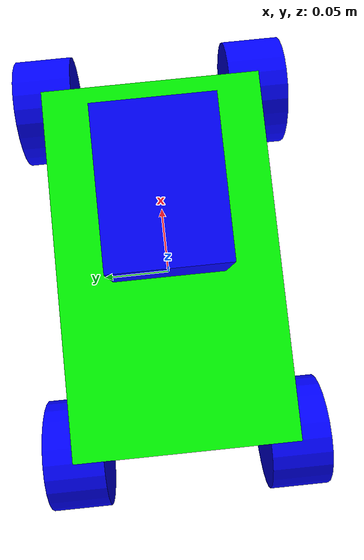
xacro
<?xml version="1.0"?>
<robot name="robot" xmlns:xacro="http://wiki.ros.org/xacro">

  <xacro:arg name="robot_type" default="omni"/>
  <xacro:property name="type" value="$(arg robot_type)" />

  <xacro:property name="base_size_x" value="0.25" />
  <xacro:property name="base_size_y" value="0.15" />
  <xacro:property name="base_size_z" value="0.005" />
  <xacro:property name="base_mass" value="0.5" />

  <!-- include file -->
  <xacro:include filename="$(find mecanum_description)/urdf/base.xacro"/>
  <xacro:include filename="$(find mecanum_description)/urdf/wheel.xacro"/>
  <xacro:include filename="$(find mecanum_description)/urdf/lidar.xacro"/>
  <xacro:include filename="$(find mecanum_description)/ros2_control/mecanum_ros2_control.xacro"/>

  <!-- parameters wheel -->
  <xacro:property name="wheel_radius" value="0.0375" />
  <xacro:property name="wheel_lenght" value="0.04" />

  <link name="base_footprint" />

  <!-- parameters base_link -->
  <xacro:robot_base parent="base_footprint" child="base" xyz="0 0 ${wheel_radius*2}" rpy="0 0 0" />

  <xacro:wheel parent="base" child="fl" xyz="${base_size_x/2} ${base_size_y/2} ${-wheel_radius}" rpy="1.57 0 0" robot_type="$(arg robot_type)" />
  <xacro:wheel parent="base" child="fr" xyz="${base_size_x/2} ${-base_size_y/2} ${-wheel_radius}" rpy="1.57 0 0" robot_type="$(arg robot_type)" />
  <xacro:wheel parent="base" child="rl" xyz="${-base_size_x/2} ${base_size_y/2} ${-wheel_radius}" rpy="1.57 0 0" robot_type="$(arg robot_type)" />
  <xacro:wheel parent="base" child="rr" xyz="${-base_size_x/2} ${-base_size_y/2} ${-wheel_radius}" rpy="1.57 0 0" robot_type="$(arg robot_type)" />

  <xacro:lidar parent="base" child="lidar" xyz="0.04 0.0 0.035" rpy="0 0 0" />

  <xacro:mecanum_ros2_control name="mecanum_robot" use_mock_hardware="true"/>

</robot>

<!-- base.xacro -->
<robot xmlns:xacro="http://wiki.ros.org/xacro">

  <xacro:macro name="robot_base" params="parent child xyz rpy">

    <link name="${child}_link">
      <visual>
        <geometry>
          <box size="${base_size_x} ${base_size_y} ${base_size_z}" />
        </geometry>
        <material name="green">
          <color rgba="0.0 1 0.0 1" />
        </material>
      </visual>
      <collision>
        <geometry>
          <box size="${base_size_x} ${base_size_y} ${base_size_z}" />
        </geometry>
      </collision>
      <inertial>
        <mass value="${base_mass}" />
        <inertia ixx="0.015" ixy="0" ixz="0" iyy="0.0375" iyz="0.0" izz="0.0275" />
      </inertial>
    </link>

    <joint name="${child}_joint" type="fixed">
      <origin xyz="${xyz}" rpy="${rpy}" />
      <parent link="${parent}" />
      <child link="${child}_link" />
    </joint>

  </xacro:macro>
</robot>

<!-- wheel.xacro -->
<robot xmlns:xacro="http://wiki.ros.org/xacro">

  <xacro:macro name="wheel" params="parent child xyz rpy robot_type">

    <link name="${child}_wheel_link">
      <visual>
        <geometry>
          <cylinder radius="${wheel_radius}" length="${wheel_lenght}"/>
        </geometry>
        <material name="blue">
          <color rgba="0.0 0.0 1 1" />
        </material>
      </visual>
      <collision>
        <geometry>
          <cylinder radius="${wheel_radius}" length="${wheel_lenght}"/>
        </geometry>
      </collision>
      <inertial>
        <mass value="0.1" />
        <inertia ixx="0.015" ixy="0" ixz="0" iyy="0.0375" iyz="0.0" izz="0.0275" />
      </inertial>
    </link>

    <xacro:if value="${robot_type == 'omni'}">
      <joint name="${child}_joint" type="continuous">
        <axis xyz="0.0 0.0 1"/>
        <origin xyz="${xyz}" rpy="${rpy}" />
        <parent link="${parent}_link" />
        <child link="${child}_wheel_link" />
      </joint>
    </xacro:if>

    <xacro:if value="${robot_type == 'diff'}">
      <joint name="${child}_joint" type="continuous">
        <axis xyz="0.0 0.0 1"/>
        <origin xyz="${xyz}" rpy="${rpy}" />
        <parent link="${parent}_link" />
        <child link="${child}_wheel_link" />
      </joint>
    </xacro:if>

  </xacro:macro>

</robot>

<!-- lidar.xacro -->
<robot xmlns:xacro="http://wiki.ros.org/xacro">

  <xacro:macro name="lidar" params="parent child xyz rpy">

    <link name="${child}_link">
      <visual>
        <geometry>
          <box size="0.10 0.075 0.060" />
        </geometry>
        <material name="blue">
          <color rgba="0.0 0.0 1 1" />
        </material>
      </visual>
      <collision>
        <geometry>
          <box size="0.10 0.075 0.060" />
        </geometry>
      </collision>
      <inertial>
        <mass value="0.01" />
        <inertia ixx="0.015" ixy="0" ixz="0" iyy="0.0375" iyz="0.0" izz="0.0275" />
      </inertial>
    </link>

    <joint name="${child}_joint" type="fixed">
      <origin xyz="${xyz}" rpy="${rpy}" />
      <parent link="${parent}_link" />
      <child link="${child}_link" />
    </joint>

  </xacro:macro>

</robot>
